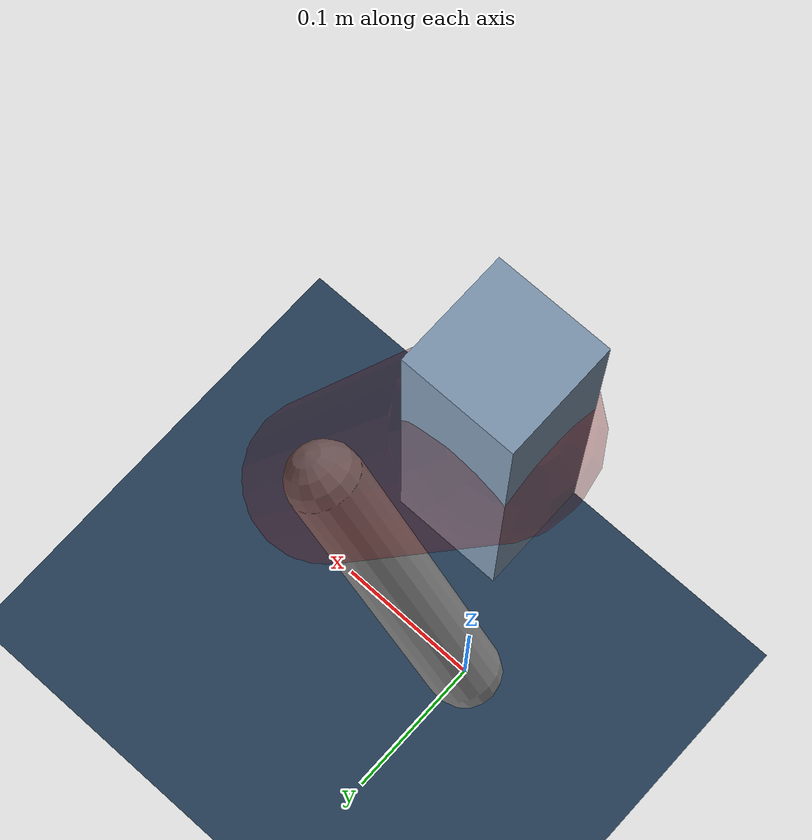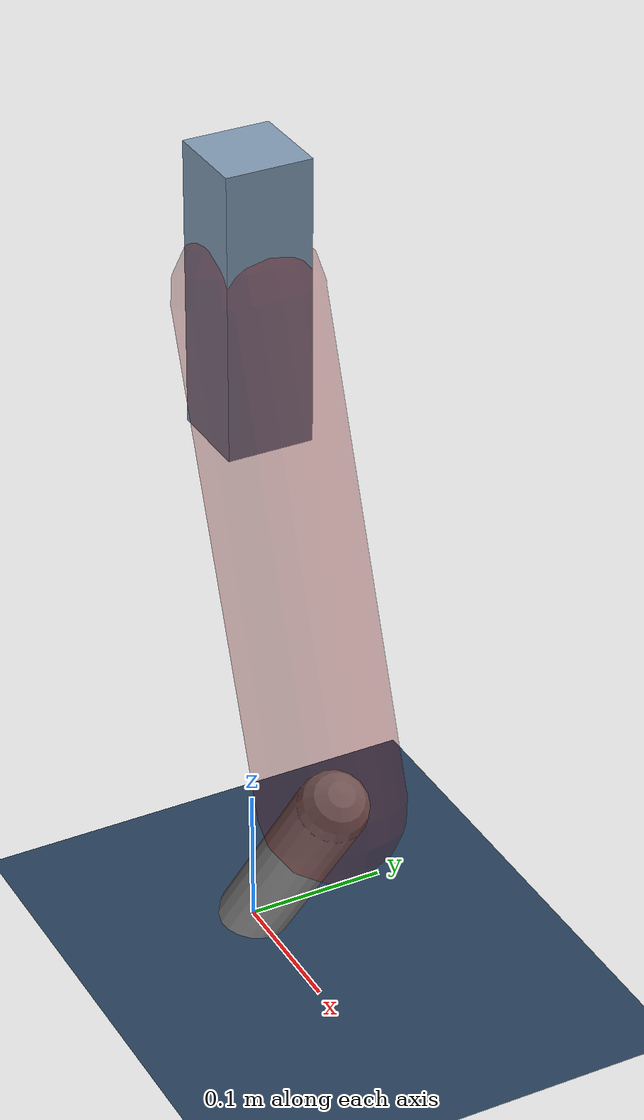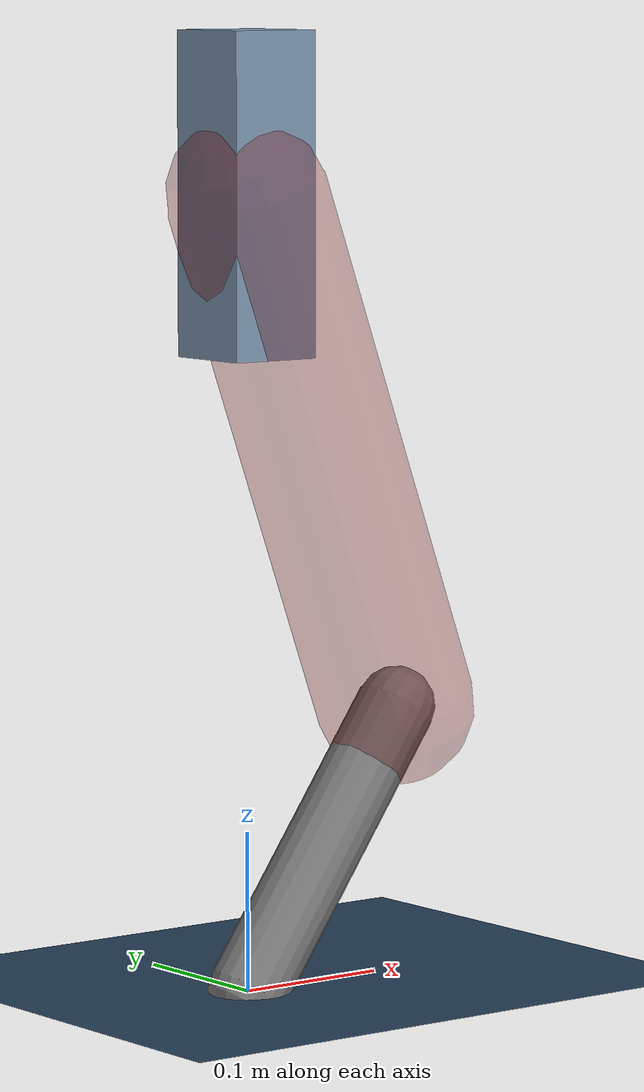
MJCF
<mujoco model="Hopper2D">
	<compiler inertiafromgeom="true" angle="radian" />
	<option timestep="0.001" integrator="implicit" cone="elliptic" solver="Newton" tolerance="1e-10" />

	<default>
		<geom contype="1" conaffinity="1" condim="3" friction="2 0.005 0.0001" solref="0.005 1" />
		<joint limited="true" damping="0.1" />
	</default>

	<asset>
		<texture name="skybox" type="skybox" builtin="gradient" rgb1=".4 .6 .8" rgb2="0 0 0" width="800" height="800" />
		<texture name="grid" type="2d" builtin="checker" rgb1=".1 .2 .3" rgb2=".2 .3 .4" width="300" height="300" mark="edge" markrgb=".2 .3 .4" />
		<material name="ground" texture="grid" texrepeat="1 1" texuniform="true" reflectance="0.1" />
		<material name="leg" rgba="0.5 0.6 0.7 1" />
	</asset>

	<worldbody>

		<geom name="floor" type="plane" size="5 5 0.25" material="ground" />

		<light directional="false" diffuse="0.8 0.8 0.8" specular="0.3 0.3 0.3" pos="0 0 2" dir="0 0 -1" />
		<light mode="targetbodycom" target="base" directional="false" diffuse="0.8 0.8 0.8" specular="0.3 0.3 0.3" pos="0 0 2" dir="0 0 -1" />

		<camera name="fixed" pos="0 -2 1" xyaxes="1 0 0 0 0 1" />
		<camera name="tracking" mode="trackcom" pos="0 -3 1" />

		<body name="root" pos="0 0 0.49513407353582406">
			<joint name="slide_x" type="slide" axis="1 0 0" range="-100 100" />
			<joint name="slide_z" type="slide" axis="0 0 1" range="0 10" />

			<body name="base" pos="0 0 0">
				<geom name="torso" type="box" size="0.03 0.03 0.1" mass="2.745" material="leg" />

				<body name="link1" pos="0 0 0" euler="0 1.2256401741645373 0">
					<joint type="hinge" axis="0 -1 0" pos="0 0 0" name="hinge1" limited="true" range="-3.14 3.14" stiffness="0" damping="0.1" />
					<geom name="thigh" type="capsule" fromto="0 0 0 0.3468602193723346 0 0" size="0.05" rgba="0.5 0 0 0.3" mass="1.1178946361797704" />

					<body name="link2" pos="0.3468602193723346 0 0" euler="0 0.9528783697858646 0">
						<joint type="hinge" axis="0 -1 0" pos="0 0 0" name="hinge2" limited="true" range="-3.14 3.14" stiffness="0" damping="0.1" />
						<geom name="shank" type="capsule" fromto="0 0 0 0.20553091120930883 0 0" size="0.025" mass="0.40552472896744707" />

					</body>
				</body>
			</body>
		</body>
	</worldbody>

	<actuator>
		<motor name="torque1" joint="hinge1" ctrlrange="-67.41628150090807 67.41628150090807" ctrllimited="true" gear="1" />
		<motor name="torque2" joint="hinge2" ctrlrange="-78.53023788886439 78.53023788886439" ctrllimited="true" gear="1" />
	</actuator>
</mujoco>
